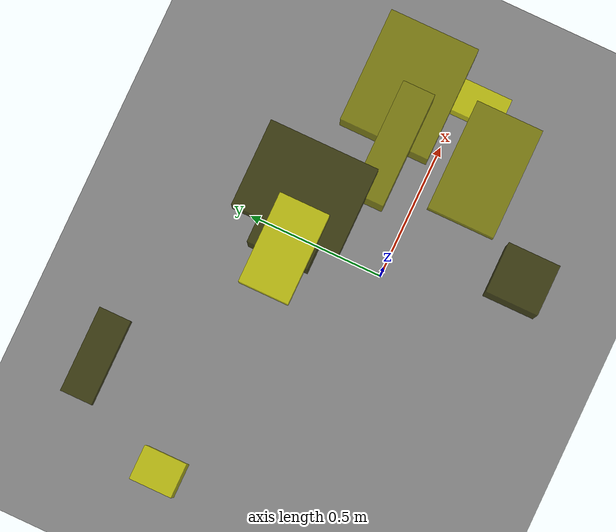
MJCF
<?xml version="1.0"?>
<mujoco model="obstacle_scene">
  <compiler angle="radian" coordinate="local"/>
  <option timestep="0.001" gravity="0 0 -9.81"/>

  <asset>
    <material name="obstacle_mat" rgba="0.8 0.8 0.0 0.8"/>
    <material name="ground_mat" rgba="0.5 0.5 0.5 1"/>
  </asset>

  <worldbody>
    <!-- Ground plane -->
    <geom name="ground" type="plane" size="3 3 0.1" material="ground_mat"/>

    <!-- Obstacles -->
    <body name="obstacle_0" pos="0.068951 0.332808 0.565413">
      <geom name="obs_0" type="box" size="0.192942 0.109834 0.126170" rgba="0.2 0.2 0.0 0.8"/>
    </body>
    <body name="obstacle_1" pos="0.382086 -0.165625 1.048027">
      <geom name="obs_1" type="box" size="0.188228 0.115046 0.038140" rgba="0.5 0.5 0.0 0.8"/>
    </body>
    <body name="obstacle_2" pos="-0.923698 0.368391 0.991791">
      <geom name="obs_2" type="box" size="0.058129 0.072571 0.117914" rgba="0.8 0.8 0.0 0.8"/>
    </body>
    <body name="obstacle_3" pos="-0.676765 0.704133 1.036498">
      <geom name="obs_3" type="box" size="0.146157 0.054420 0.036551" rgba="0.2 0.2 0.0 0.8"/>
    </body>
    <body name="obstacle_4" pos="0.549274 0.171452 0.803338">
      <geom name="obs_4" type="box" size="0.197379 0.156029 0.093738" rgba="0.5 0.5 0.0 0.8"/>
    </body>
    <body name="obstacle_5" pos="-0.131203 0.297569 1.314143">
      <geom name="obs_5" type="box" size="0.152344 0.084768 0.045056" rgba="0.8 0.8 0.0 0.8"/>
    </body>
    <body name="obstacle_6" pos="0.134449 -0.428397 0.743021">
      <geom name="obs_6" type="box" size="0.088415 0.091383 0.120646" rgba="0.2 0.2 0.0 0.8"/>
    </body>
    <body name="obstacle_7" pos="0.331226 0.134050 0.997272">
      <geom name="obs_7" type="box" size="0.195372 0.055260 0.113910" rgba="0.5 0.5 0.0 0.8"/>
    </body>
    <body name="obstacle_8" pos="0.660294 0.033043 0.241601">
      <geom name="obs_8" type="box" size="0.058761 0.189222 0.063659" rgba="0.8 0.8 0.0 0.8"/>
    </body>
    <body name="obstacle_9" pos="0.077753 0.324726 1.146016">
      <geom name="obs_9" type="box" size="0.147562 0.185550 0.080165" rgba="0.2 0.2 0.0 0.8"/>
    </body>
  </worldbody>
</mujoco>
